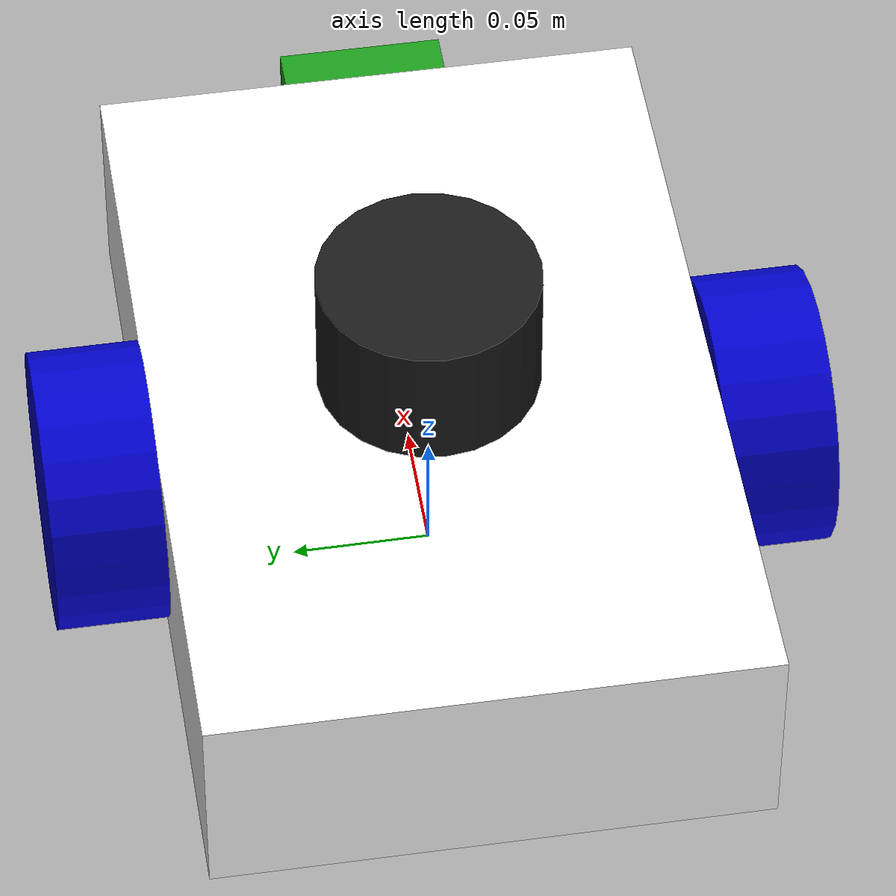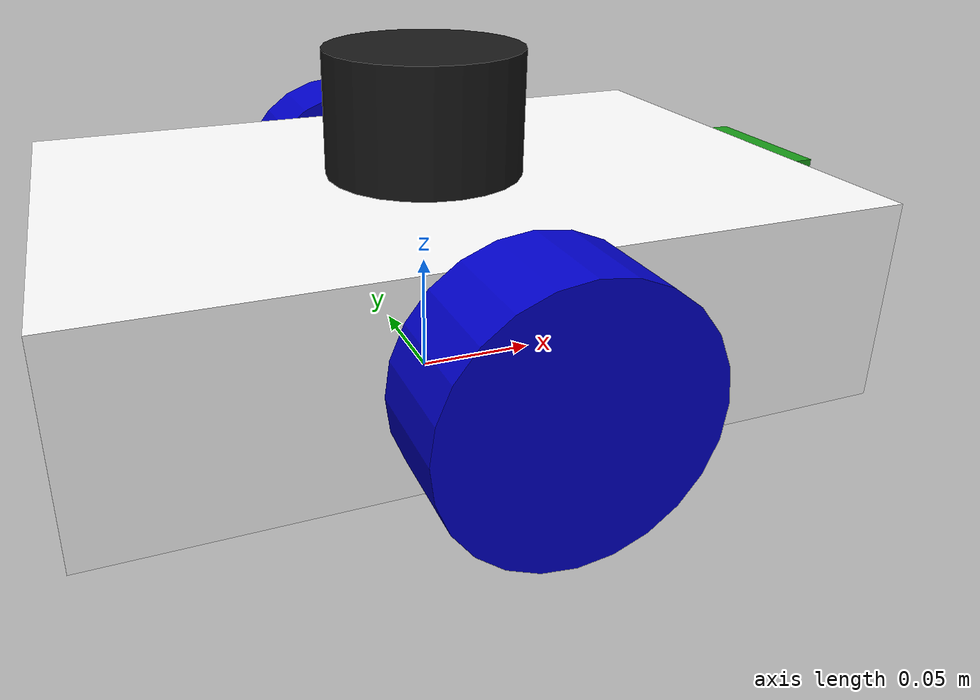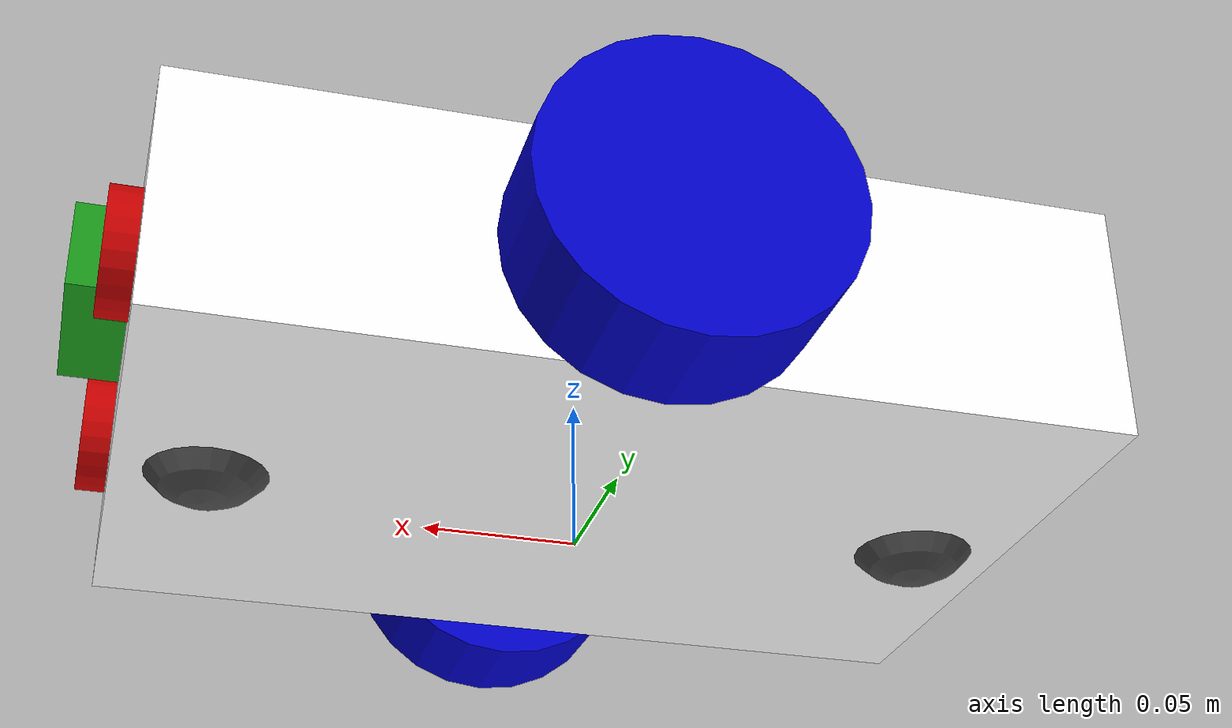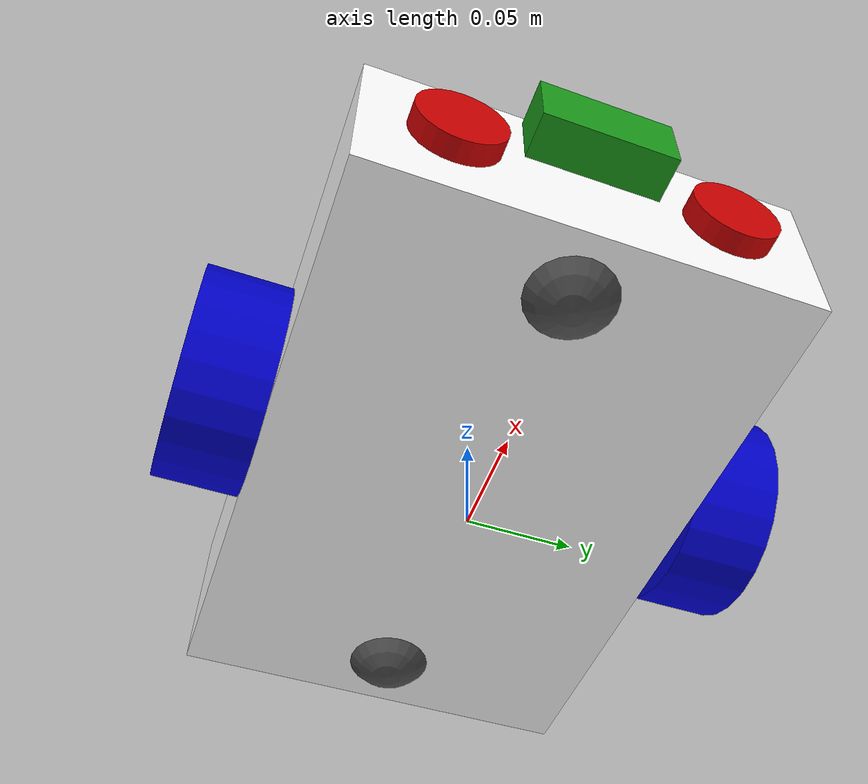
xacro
<?xml version="1.0"?>
<robot name="myrobot" xmlns:xacro="http://www.ros.org/wiki/xacro">

  <!-- ============ Properties ============ -->
  <xacro:property name="quarter_turn" value="1.5708"/>

  <!-- body -->
  <xacro:property name="base_length" value="0.3"/>
  <xacro:property name="base_width" value="0.2"/>
  <xacro:property name="base_height" value="0.08"/>
  <xacro:property name="base_mass" value="2.0"/>

  <!-- drive wheels, mounted flush against the sides of the body -->
  <xacro:property name="wheel_radius" value="0.05"/>
  <xacro:property name="wheel_width" value="0.04"/>
  <xacro:property name="wheel_mass" value="0.2"/>
  <xacro:property name="wheel_separation" value="${base_width + wheel_width}"/>

  <!-- casters, placed so their bottom touches the ground at the same height as the wheels -->
  <xacro:property name="caster_radius" value="0.025"/>
  <xacro:property name="caster_mass" value="0.05"/>
  <xacro:property name="caster_x_offset" value="0.12"/>
  <xacro:property name="caster_z_offset" value="${caster_radius - wheel_radius}"/>

  <!-- front lights -->
  <xacro:property name="light_radius" value="0.02"/>
  <xacro:property name="light_length" value="0.02"/>
  <xacro:property name="light_y_offset" value="0.06"/>

  <!-- lidar, sits on top of the body -->
  <xacro:property name="lidar_radius" value="0.04"/>
  <xacro:property name="lidar_length" value="0.05"/>
  <xacro:property name="lidar_mass" value="0.1"/>

  <!-- camera, mounted on the front face of the body -->
  <xacro:property name="camera_depth" value="0.02"/>
  <xacro:property name="camera_width" value="0.06"/>
  <xacro:property name="camera_height" value="0.03"/>
  <xacro:property name="camera_mass" value="0.05"/>
  <xacro:property name="camera_z_offset" value="0.02"/>

  <!-- ============ Materials ============ -->
  <material name="blue">
    <color rgba="0 0 0.8 1"/>
  </material>

  <material name="red">
    <color rgba="0.8 0 0 1"/>
  </material>

  <material name="white">
    <color rgba="1 1 1 1"/>
  </material>

  <!-- ============ Macros ============ -->
  <!-- inertia of a solid box with mass m and side lengths x, y, z, centered on the link origin -->
  <xacro:macro name="box_inertia" params="m x y z">
    <inertial>
      <mass value="${m}"/>
      <inertia ixx="${m*(y*y + z*z)/12}" ixy="0" ixz="0"
              iyy="${m*(x*x + z*z)/12}" iyz="0"
              izz="${m*(x*x + y*y)/12}"/>
    </inertial>
  </xacro:macro>

  <!-- the robot body (base_link), with two front lights to indicate which side is front -->
  <xacro:macro name="body" params="length width height mass">
    <link name="base_link">
      <!-- visual of the body -->
      <visual>
        <geometry>
          <box size="${length} ${width} ${height}"/>
        </geometry>
        <material name="white"/>
      </visual>

      <!-- visual of the lights, to indicate which side is front -->
      <visual>
        <origin xyz="${length/2} ${light_y_offset} 0" rpy="0 ${quarter_turn} 0"/>
        <geometry>
          <cylinder radius="${light_radius}" length="${light_length}"/>
        </geometry>
        <material name="red"/>
      </visual>

      <visual>
        <origin xyz="${length/2} ${-light_y_offset} 0" rpy="0 ${quarter_turn} 0"/>
        <geometry>
          <cylinder radius="${light_radius}" length="${light_length}"/>
        </geometry>
        <material name="red"/>
      </visual>

      <collision>
        <geometry>
          <box size="${length} ${width} ${height}"/>
        </geometry>
      </collision>

      <xacro:box_inertia m="${mass}" x="${length}" y="${width}" z="${height}"/>
    </link>
  </xacro:macro>

  <!-- Wheel macros -->
  <xacro:macro name="wheel_link" params="side_name">
    <link name="${side_name}_wheel_link">
      <visual>
        <origin xyz="0 0 0" rpy="${quarter_turn} 0 0"/>
        <geometry>
          <cylinder radius="${wheel_radius}" length="${wheel_width}"/>
        </geometry>
        <material name="blue"/>
      </visual>

      <!-- uses quarter_turn (1.5708), not ${pi/2}: see the note on quarter_turn -->
      <collision>
        <origin xyz="0 0 0" rpy="${quarter_turn} 0 0"/>
        <geometry>
          <cylinder radius="${wheel_radius}" length="${wheel_width}"/>
        </geometry>
      </collision>

      <!-- solid cylinder whose axis runs along y (the spin axis), so iyy gets the m*r^2/2 term -->
      <inertial>
        <mass value="${wheel_mass}"/>
        <inertia ixx="${wheel_mass*(3*wheel_radius*wheel_radius + wheel_width*wheel_width)/12}" ixy="0" ixz="0"
                iyy="${wheel_mass*wheel_radius*wheel_radius/2}" iyz="0"
                izz="${wheel_mass*(3*wheel_radius*wheel_radius + wheel_width*wheel_width)/12}"/>
      </inertial>
    </link>
  </xacro:macro>

  <xacro:macro name="wheel_joint" params="side_name parent_link y_origin">
    <joint name="${side_name}_wheel_joint" type="continuous">
      <parent link="${parent_link}"/>
      <child link="${side_name}_wheel_link"/>
      <origin xyz="0 ${y_origin} 0" rpy="0 0 0"/>
      <axis xyz="0 1 0"/>
    </joint>
  </xacro:macro>

  <!-- caster macros -->
  <xacro:macro name="caster_link" params="side_name">
    <link name="${side_name}_caster_link">
      <visual>
        <geometry>
          <sphere radius="${caster_radius}"/>
        </geometry>
        <material name="caster_gray">
          <color rgba="0.3 0.3 0.3 1"/>
        </material>
      </visual>

      <collision>
        <geometry>
          <sphere radius="${caster_radius}"/>
        </geometry>
      </collision>

      <!-- solid sphere: the same 2/5*m*r^2 about every axis -->
      <inertial>
        <mass value="${caster_mass}"/>
        <inertia ixx="${2*caster_mass*caster_radius*caster_radius/5}" ixy="0" ixz="0"
                iyy="${2*caster_mass*caster_radius*caster_radius/5}" iyz="0"
                izz="${2*caster_mass*caster_radius*caster_radius/5}"/>
      </inertial>
    </link>
  </xacro:macro>

  <xacro:macro name="caster_joint" params="side_name parent_link x_origin">
    <joint name="${side_name}_caster_joint" type="fixed">
      <parent link="${parent_link}"/>
      <child link="${side_name}_caster_link"/>
      <origin xyz="${x_origin} 0 ${caster_z_offset}" rpy="0 0 0"/>
    </joint>
  </xacro:macro>

  <!-- footprint macro -->
  <!-- link to be used as the origin so that it is off the ground / origin (to fix warning)-->
  <xacro:macro name="footprint" params="child_link">
    <link name="base_footprint"/>

    <!-- the wheel axles are level with the body's center, so lift the body by one wheel radius -->
    <joint name="base_footprint_joint" type="fixed">
      <parent link="base_footprint"/>
      <child link="${child_link}"/>
      <origin xyz="0 0 ${wheel_radius}" rpy="0 0 0"/>
    </joint>
  </xacro:macro>

  <!-- lidar macros -->
  <xacro:macro name="lidar_link" params="">
    <link name="lidar_link">
      <visual>
        <geometry>
          <cylinder radius="${lidar_radius}" length="${lidar_length}"/>
        </geometry>
        <material name="lidar_black">
          <color rgba="0.1 0.1 0.1 1"/>
        </material>
      </visual>

      <collision>
        <geometry>
          <cylinder radius="${lidar_radius}" length="${lidar_length}"/>
        </geometry>
      </collision>

      <!-- solid cylinder standing upright, axis along z, so izz gets the m*r^2/2 term -->
      <inertial>
        <mass value="${lidar_mass}"/>
        <inertia ixx="${lidar_mass*(3*lidar_radius*lidar_radius + lidar_length*lidar_length)/12}" ixy="0" ixz="0"
                iyy="${lidar_mass*(3*lidar_radius*lidar_radius + lidar_length*lidar_length)/12}" iyz="0"
                izz="${lidar_mass*lidar_radius*lidar_radius/2}"/>
      </inertial>
    </link>
  </xacro:macro>

  <!-- the lidar sits on top of the parent link -->
  <xacro:macro name="lidar_joint" params="parent_link">
    <joint name="lidar_joint" type="fixed">
      <parent link="${parent_link}"/>
      <child link="lidar_link"/>
      <origin xyz="0 0 ${base_height/2 + lidar_length/2}" rpy="0 0 0"/>
    </joint>
  </xacro:macro>

  <!-- camera macros -->
  <xacro:macro name="camera_link" params="">
    <link name="camera_link">
      <visual>
        <geometry>
          <box size="${camera_depth} ${camera_width} ${camera_height}"/>
        </geometry>
        <material name="camera_green">
          <color rgba="0.1 0.6 0.1 1"/>
        </material>
      </visual>

      <collision>
        <geometry>
          <box size="${camera_depth} ${camera_width} ${camera_height}"/>
        </geometry>
      </collision>

      <xacro:box_inertia m="${camera_mass}" x="${camera_depth}" y="${camera_width}" z="${camera_height}"/>
    </link>
  </xacro:macro>

  <!-- the camera is mounted on the front face of the parent link -->
  <xacro:macro name="camera_joint" params="parent_link">
    <joint name="camera_joint" type="fixed">
      <parent link="${parent_link}"/>
      <child link="camera_link"/>
      <origin xyz="${base_length/2 + camera_depth/2} 0 ${camera_z_offset}" rpy="0 0 0"/>
    </joint>
  </xacro:macro>

  <!-- ============ Footprint ============ -->
  <xacro:footprint child_link="base_link"/>

  <!-- ============ Body ============ -->
  <xacro:body length="${base_length}" width="${base_width}" height="${base_height}" mass="${base_mass}"/>

  <!-- ============ left drive wheel ============ -->
  <xacro:wheel_link side_name="left"/>
  <xacro:wheel_joint side_name="left" parent_link="base_link" y_origin="${wheel_separation/2}"/>

  <!-- ============ Right drive wheel ============ -->
  <xacro:wheel_link side_name="right"/>
  <xacro:wheel_joint side_name="right" parent_link="base_link" y_origin="${-wheel_separation/2}"/>

  <!-- ============ front caster ============ -->
  <xacro:caster_link side_name="front"/>
  <xacro:caster_joint side_name="front" parent_link="base_link" x_origin="${caster_x_offset}"/>

  <!-- ============ back caster ============ -->
  <xacro:caster_link side_name="back"/>
  <xacro:caster_joint side_name="back" parent_link="base_link" x_origin="${-caster_x_offset}"/>

  <!-- ============ lidar ============ -->
  <xacro:lidar_link/>
  <xacro:lidar_joint parent_link="base_link"/>

  <!-- ============ camera ============ -->
  <xacro:camera_link/>
  <xacro:camera_joint parent_link="base_link"/>

  <!-- gazebo section -->

  <!-- Casters should slide freely: zero friction (this tag may be ignored; see spin test) -->
  <gazebo reference="front_caster_link">
    <mu1>0.0</mu1>
    <mu2>0.0</mu2>
  </gazebo>

  <gazebo reference="back_caster_link">
    <mu1>0.0</mu1>
    <mu2>0.0</mu2>
  </gazebo>

  <gazebo>
    <!--publishes the simulated angle of every joint, so ROS can build the wheel TF frames   -->
    <plugin filename="gz-sim-joint-state-publisher-system" name="gz::sim::systems::JointStatePublisher">
    <!-- https://gazebosim.org/api/gazebo/6/classignition_1_1gazebo_1_1systems_1_1JointStatePublisher.html-->
      <topic>joint_states</topic>
    </plugin>

    <!-- Listens for velocity commands, spins the wheels, and publishes odometry -->
    <plugin filename="gz-sim-diff-drive-system" name="gz::sim::systems::DiffDrive">
    <!-- https://gazebosim.org/api/gazebo/6/classignition_1_1gazebo_1_1systems_1_1DiffDrive.html-->
      <left_joint>left_wheel_joint</left_joint>
      <right_joint>right_wheel_joint</right_joint>

      <!-- distance between the left and right wheel centers (physical value, no slip fudge) -->
      <wheel_separation>${wheel_separation}</wheel_separation>
      <wheel_radius>${wheel_radius}</wheel_radius>

      <!-- Gazebo-side topic names (the bridge will connect these to ROS topics) -->
      <topic>cmd_vel</topic>
      <odom_topic>odom</odom_topic>
      <!--  Frame names used in the odometry and the odom -> base TF -->
      <tf_topic>tf</tf_topic>
      <frame_id>odom</frame_id>
      <child_frame_id>base_footprint</child_frame_id>
    </plugin>
  </gazebo>

  <!-- attach the sensor to this lidar_link -->
  <gazebo reference="lidar_link">
    <!-- declares a lidar sensor-->
    <sensor name="lidar" type="gpu_lidar">
      <gz_frame_id>lidar_link</gz_frame_id>
      <!-- name of the topic-->
      <topic>scan</topic>
      <update_rate>15</update_rate>
      <always_on>true</always_on>
      <visualize>true</visualize>
      <lidar>
        <scan>
          <horizontal>
            <samples>360</samples>
            <resolution>1</resolution>
            <min_angle>-3.14159</min_angle>
            <max_angle>3.14159</max_angle>
          </horizontal>
        </scan>
        <range>
          <min>0.12</min>
          <max>10.0</max>
          <resolution>0.01</resolution>
        </range>
      </lidar>
    </sensor>
  </gazebo>

  <gazebo reference="camera_link">
    <sensor name="camera" type="camera">
      <gz_frame_id>camera_link</gz_frame_id>
      <!-- The image_raw name is the ROS convention for an unprocessed image.-->
      <topic>camera/image_raw</topic>
      <update_rate>30</update_rate>
      <always_on>true</always_on>
      <camera>
        <horizontal_fov>1.047</horizontal_fov>
        <image>
          <width>640</width>
          <height>480</height>
          <format>R8G8B8</format>
        </image>
        <clip>
          <near>0.1</near>
          <far>100</far>
        </clip>
      </camera>
    </sensor>
  </gazebo>

</robot>
